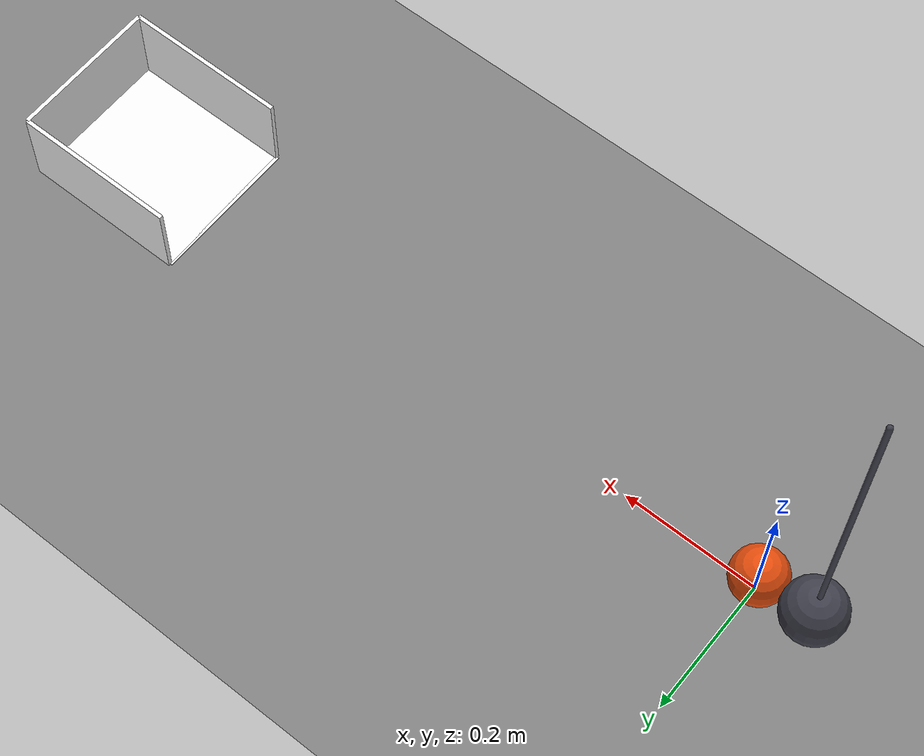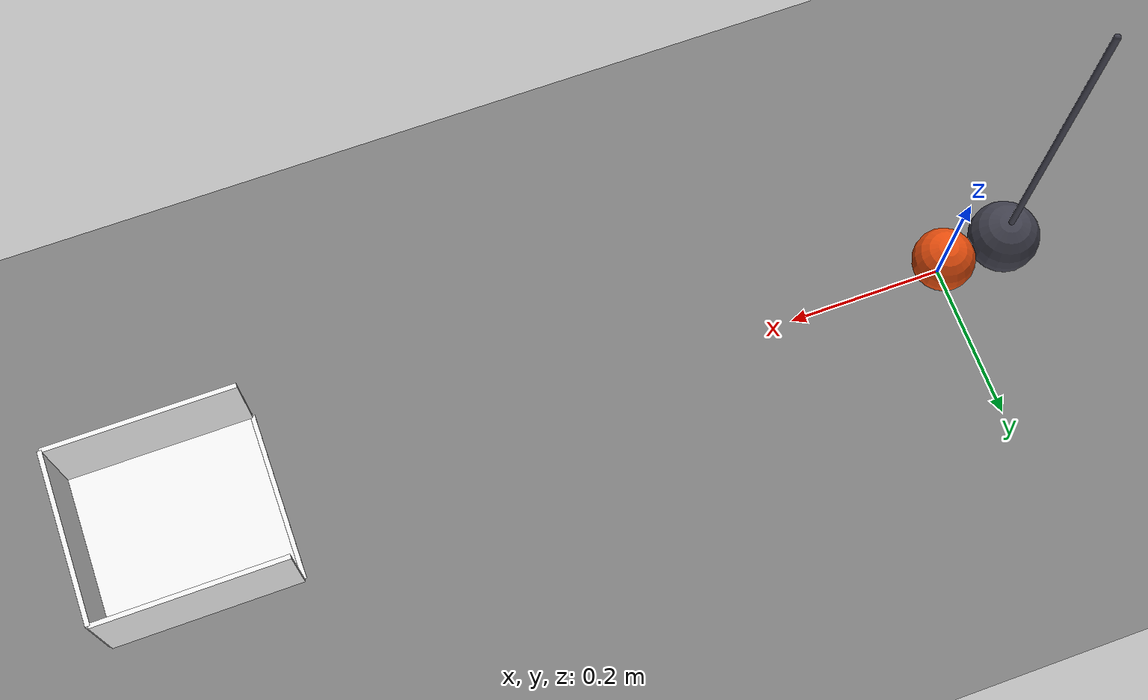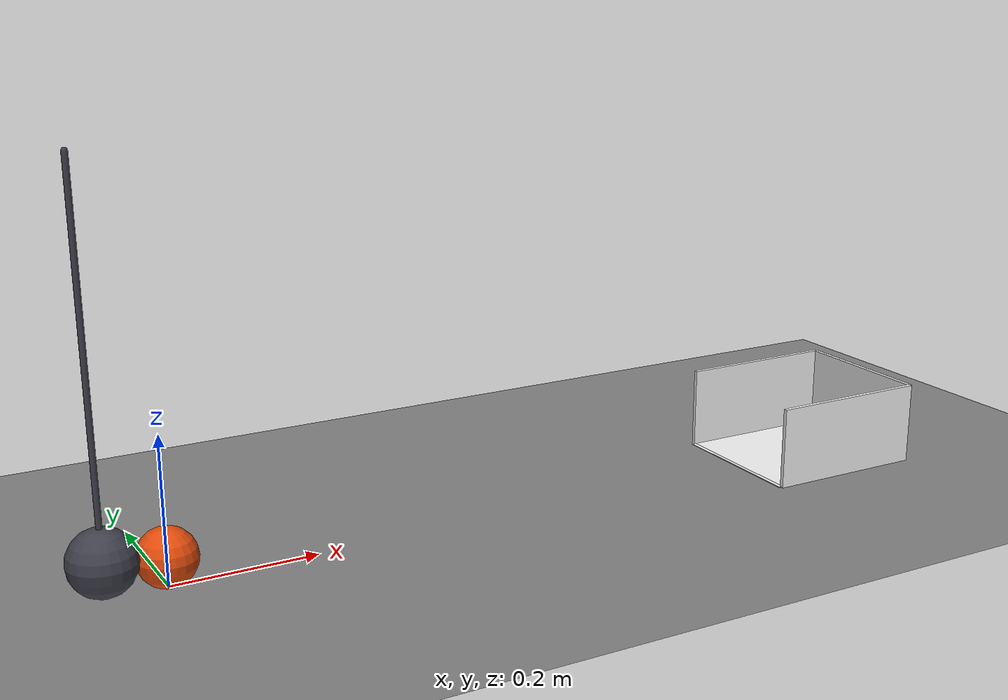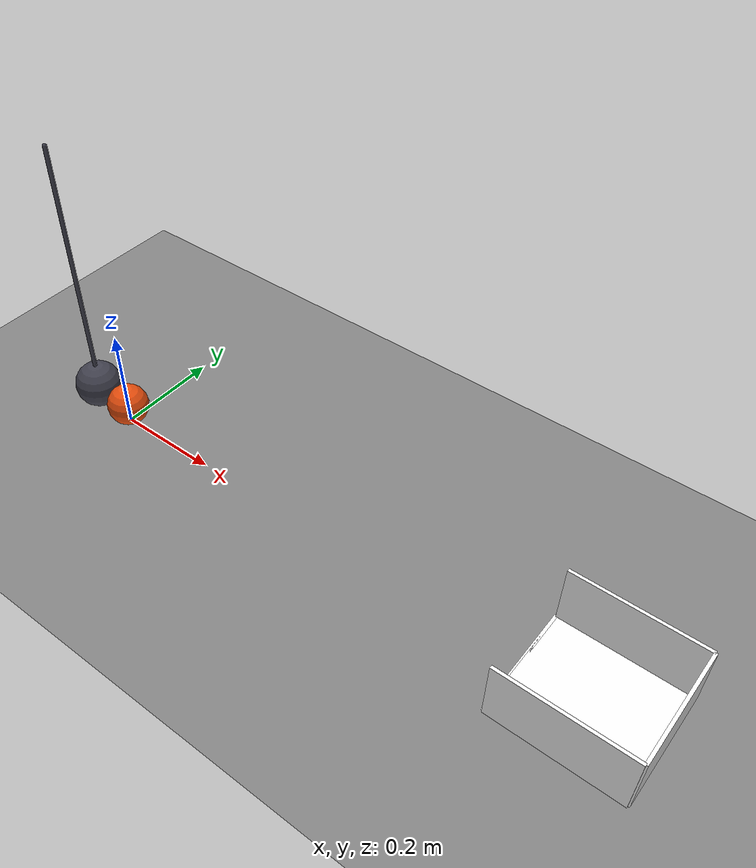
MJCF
<mujoco model="pendulum_rolls_a_ball_into_a_cup">
  <compiler angle="radian"/>
  <option timestep="0.002"/>
  <worldbody>
    <geom name="floor" type="plane" size="4 4 0.1" friction="0.6 0.001 0.0001"/>
    <body name="ball" pos="0 0 0.04">
      <freejoint/>
      <geom name="ball" type="sphere" pos="0 0 0" size="0.04" mass="0.05" condim="6" friction="0.6 0.001 0.0001" solref="0.01 1" rgba="0.9 0.3 0.05 1"/>
    </body>
    <body name="pendulum" pos="-0.08 0 0.55">
      <joint name="pendulum_hinge" type="hinge" pos="0 0 0" axis="0 1 0" limited="true" range="0 0.523599" damping="0.01"/>
      <geom name="pendulum" type="sphere" pos="0 0 -0.5" size="0.045" mass="0.3" solref="0.01 1" rgba="0.25 0.25 0.3 1"/>
      <geom name="pendulum rod" type="capsule" size="0.004" fromto="0 0 0 0 0 -0.455" mass="0.01" rgba="0.25 0.25 0.3 1"/>
    </body>
    <body name="cup">
      <geom name="cup_base" type="box" pos="1 0 0.0005" size="0.12 0.11 0.0005" friction="0.9 0.01 0.01" solref="0.01 1" rgba="0.95 0.95 0.95 1"/>
      <geom name="cup_near_wall" type="box" pos="0.88 0 0.0005" size="0.003 0.11 0.0005" friction="0.9 0.01 0.01" solref="0.01 1" rgba="0.95 0.95 0.95 1"/>
      <geom name="cup_far_wall" type="box" pos="1.12 0 0.06" size="0.003 0.11 0.06" friction="0.9 0.01 0.01" solref="0.01 1" rgba="0.95 0.95 0.95 1"/>
      <geom name="cup_left_wall" type="box" pos="1 0.11 0.06" size="0.12 0.003 0.06" friction="0.9 0.01 0.01" solref="0.01 1" rgba="0.95 0.95 0.95 1"/>
      <geom name="cup_right_wall" type="box" pos="1 -0.11 0.06" size="0.12 0.003 0.06" friction="0.9 0.01 0.01" solref="0.01 1" rgba="0.95 0.95 0.95 1"/>
    </body>
  </worldbody>
  <keyframe>
    <key name="start" qpos="0 0 0.04 1 0 0 0 0.523599" qvel="0 0 0 0 0 0 0"/>
  </keyframe>
</mujoco>
